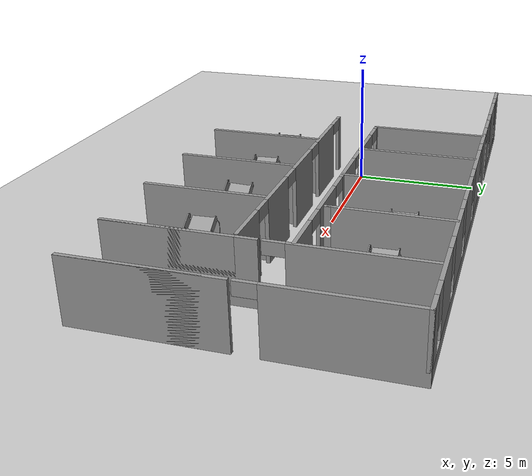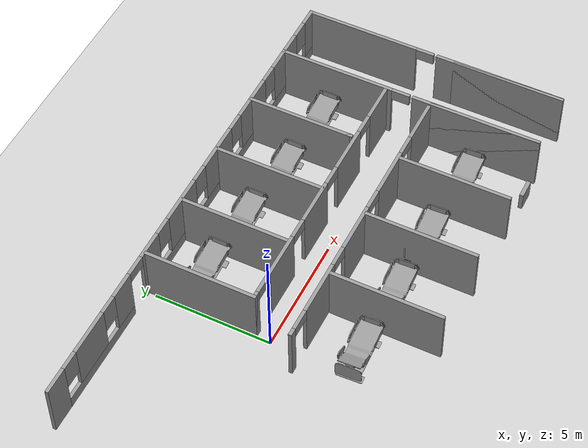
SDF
<sdf version="1.6">
 <world name="default">
  <model name="ground_plane">
   <static>1</static>
   <link name="link">
    <collision name="collision">
     <geometry><plane><normal>0 0 1</normal><size>100 100</size></plane></geometry>
     <surface><friction><ode><mu>100</mu><mu2>50</mu2></ode></friction></surface>
    </collision>
    <visual name="visual">
     <cast_shadows>0</cast_shadows>
     <geometry><plane><normal>0 0 1</normal><size>100 100</size></plane></geometry>
     <material>
      <script><uri>file://media/materials/scripts/gazebo.material</uri><name>Gazebo/Grey</name></script>
     </material>
    </visual>
   </link>
  </model>
  <model name="hopial">
   <pose>-0.234733 -0.327575 0 0 -0 0</pose>
   <link name="Wall_0">
    <pose>4 5.69478 0 0 -0 0</pose>
    <visual name="Wall_0_Visual_0">
     <pose>-10.0664 0 1.25 0 -0 0</pose>
     <geometry><box><size>1.11724 0.15 2.5</size></box></geometry>
     <material>
      <script><uri>file://media/materials/scripts/gazebo.material</uri><name>Gazebo/Grey</name></script>
      <ambient>1 1 1 1</ambient>
     </material>
    </visual>
    <collision name="Wall_0_Collision_0">
     <geometry><box><size>1.11724 0.15 2.5</size></box></geometry>
     <pose>-10.0664 0 1.25 0 -0 0</pose>
    </collision>
    <visual name="Wall_0_Visual_1">
     <pose>-3.29053 0 1.25 0 -0 0</pose>
     <geometry><box><size>1.24358 0.15 2.5</size></box></geometry>
     <material>
      <script><uri>file://media/materials/scripts/gazebo.material</uri><name>Gazebo/Grey</name></script>
      <ambient>1 1 1 1</ambient>
     </material>
    </visual>
    <collision name="Wall_0_Collision_1">
     <geometry><box><size>1.24358 0.15 2.5</size></box></geometry>
     <pose>-3.29053 0 1.25 0 -0 0</pose>
    </collision>
    <visual name="Wall_0_Visual_2">
     <pose>-7.16004 0 0.25 0 -0 0</pose>
     <geometry><box><size>4.69544 0.15 0.5</size></box></geometry>
     <material>
      <script><uri>file://media/materials/scripts/gazebo.material</uri><name>Gazebo/Grey</name></script>
      <ambient>1 1 1 1</ambient>
     </material>
    </visual>
    <collision name="Wall_0_Collision_2">
     <geometry><box><size>4.69544 0.15 0.5</size></box></geometry>
     <pose>-7.16004 0 0.25 0 -0 0</pose>
    </collision>
    <visual name="Wall_0_Visual_3">
     <pose>3.97813 0 0.25 0 -0 0</pose>
     <geometry><box><size>13.2937 0.15 0.5</size></box></geometry>
     <material>
      <script><uri>file://media/materials/scripts/gazebo.material</uri><name>Gazebo/Grey</name></script>
      <ambient>1 1 1 1</ambient>
     </material>
    </visual>
    <collision name="Wall_0_Collision_3">
     <geometry><box><size>13.2937 0.15 0.5</size></box></geometry>
     <pose>3.97813 0 0.25 0 -0 0</pose>
    </collision>
    <visual name="Wall_0_Visual_4">
     <pose>-7.7353 0 1.5 0 -0 0</pose>
     <geometry><box><size>1.94491 0.15 2</size></box></geometry>
     <material>
      <script><uri>file://media/materials/scripts/gazebo.material</uri><name>Gazebo/Grey</name></script>
      <ambient>1 1 1 1</ambient>
     </material>
    </visual>
    <collision name="Wall_0_Collision_4">
     <geometry><box><size>1.94491 0.15 2</size></box></geometry>
     <pose>-7.7353 0 1.5 0 -0 0</pose>
    </collision>
    <visual name="Wall_0_Visual_5">
     <pose>-5.38758 0 1.5 0 -0 0</pose>
     <geometry><box><size>1.15053 0.15 2</size></box></geometry>
     <material>
      <script><uri>file://media/materials/scripts/gazebo.material</uri><name>Gazebo/Grey</name></script>
      <ambient>1 1 1 1</ambient>
     </material>
    </visual>
    <collision name="Wall_0_Collision_5">
     <geometry><box><size>1.15053 0.15 2</size></box></geometry>
     <pose>-5.38758 0 1.5 0 -0 0</pose>
    </collision>
    <visual name="Wall_0_Visual_6">
     <pose>-5.38758 0 1.5 0 -0 0</pose>
     <geometry><box><size>1.15053 0.15 2</size></box></geometry>
     <material>
      <script><uri>file://media/materials/scripts/gazebo.material</uri><name>Gazebo/Grey</name></script>
      <ambient>1 1 1 1</ambient>
     </material>
    </visual>
    <collision name="Wall_0_Collision_6">
     <geometry><box><size>1.15053 0.15 2</size></box></geometry>
     <pose>-5.38758 0 1.5 0 -0 0</pose>
    </collision>
    <visual name="Wall_0_Visual_7">
     <pose>-0.80324 0 1.5 0 -0 0</pose>
     <geometry><box><size>2.13101 0.15 2</size></box></geometry>
     <material>
      <script><uri>file://media/materials/scripts/gazebo.material</uri><name>Gazebo/Grey</name></script>
      <ambient>1 1 1 1</ambient>
     </material>
    </visual>
    <collision name="Wall_0_Collision_7">
     <geometry><box><size>2.13101 0.15 2</size></box></geometry>
     <pose>-0.80324 0 1.5 0 -0 0</pose>
    </collision>
    <visual name="Wall_0_Visual_8">
     <pose>2.15103 0 1.5 0 -0 0</pose>
     <geometry><box><size>2.17753 0.15 2</size></box></geometry>
     <material>
      <script><uri>file://media/materials/scripts/gazebo.material</uri><name>Gazebo/Grey</name></script>
      <ambient>1 1 1 1</ambient>
     </material>
    </visual>
    <collision name="Wall_0_Collision_8">
     <geometry><box><size>2.17753 0.15 2</size></box></geometry>
     <pose>2.15103 0 1.5 0 -0 0</pose>
    </collision>
    <visual name="Wall_0_Visual_9">
     <pose>5.1053 0 1.5 0 -0 0</pose>
     <geometry><box><size>2.13101 0.15 2</size></box></geometry>
     <material>
      <script><uri>file://media/materials/scripts/gazebo.material</uri><name>Gazebo/Grey</name></script>
      <ambient>1 1 1 1</ambient>
     </material>
    </visual>
    <collision name="Wall_0_Collision_9">
     <geometry><box><size>2.13101 0.15 2</size></box></geometry>
     <pose>5.1053 0 1.5 0 -0 0</pose>
    </collision>
    <visual name="Wall_0_Visual_10">
     <pose>7.98978 0 1.5 0 -0 0</pose>
     <geometry><box><size>2.03796 0.15 2</size></box></geometry>
     <material>
      <script><uri>file://media/materials/scripts/gazebo.material</uri><name>Gazebo/Grey</name></script>
      <ambient>1 1 1 1</ambient>
     </material>
    </visual>
    <collision name="Wall_0_Collision_10">
     <geometry><box><size>2.03796 0.15 2</size></box></geometry>
     <pose>7.98978 0 1.5 0 -0 0</pose>
    </collision>
    <visual name="Wall_0_Visual_11">
     <pose>10.2169 0 1.5 0 -0 0</pose>
     <geometry><box><size>0.816241 0.15 2</size></box></geometry>
     <material>
      <script><uri>file://media/materials/scripts/gazebo.material</uri><name>Gazebo/Grey</name></script>
      <ambient>1 1 1 1</ambient>
     </material>
    </visual>
    <collision name="Wall_0_Collision_11">
     <geometry><box><size>0.816241 0.15 2</size></box></geometry>
     <pose>10.2169 0 1.5 0 -0 0</pose>
    </collision>
    <visual name="Wall_0_Visual_12">
     <pose>-9.10776 0 1.9 0 -0 0</pose>
     <geometry><box><size>0.8 0.15 1.2</size></box></geometry>
     <material>
      <script><uri>file://media/materials/scripts/gazebo.material</uri><name>Gazebo/Grey</name></script>
      <ambient>1 1 1 1</ambient>
     </material>
    </visual>
    <collision name="Wall_0_Collision_12">
     <geometry><box><size>0.8 0.15 1.2</size></box></geometry>
     <pose>-9.10776 0 1.9 0 -0 0</pose>
    </collision>
    <visual name="Wall_0_Visual_13">
     <pose>-2.26874 0 1.9 0 -0 0</pose>
     <geometry><box><size>0.8 0.15 1.2</size></box></geometry>
     <material>
      <script><uri>file://media/materials/scripts/gazebo.material</uri><name>Gazebo/Grey</name></script>
      <ambient>1 1 1 1</ambient>
     </material>
    </visual>
    <collision name="Wall_0_Collision_13">
     <geometry><box><size>0.8 0.15 1.2</size></box></geometry>
     <pose>-2.26874 0 1.9 0 -0 0</pose>
    </collision>
    <visual name="Wall_0_Visual_14">
     <pose>-6.36285 0 1.9 0 -0 0</pose>
     <geometry><box><size>0.8 0.15 1.2</size></box></geometry>
     <material>
      <script><uri>file://media/materials/scripts/gazebo.material</uri><name>Gazebo/Grey</name></script>
      <ambient>1 1 1 1</ambient>
     </material>
    </visual>
    <collision name="Wall_0_Collision_14">
     <geometry><box><size>0.8 0.15 1.2</size></box></geometry>
     <pose>-6.36285 0 1.9 0 -0 0</pose>
    </collision>
    <visual name="Wall_0_Visual_15">
     <pose>0.662263 0 1.9 0 -0 0</pose>
     <geometry><box><size>0.8 0.15 1.2</size></box></geometry>
     <material>
      <script><uri>file://media/materials/scripts/gazebo.material</uri><name>Gazebo/Grey</name></script>
      <ambient>1 1 1 1</ambient>
     </material>
    </visual>
    <collision name="Wall_0_Collision_15">
     <geometry><box><size>0.8 0.15 1.2</size></box></geometry>
     <pose>0.662263 0 1.9 0 -0 0</pose>
    </collision>
    <visual name="Wall_0_Visual_16">
     <pose>3.63979 0 1.9 0 -0 0</pose>
     <geometry><box><size>0.8 0.15 1.2</size></box></geometry>
     <material>
      <script><uri>file://media/materials/scripts/gazebo.material</uri><name>Gazebo/Grey</name></script>
      <ambient>1 1 1 1</ambient>
     </material>
    </visual>
    <collision name="Wall_0_Collision_16">
     <geometry><box><size>0.8 0.15 1.2</size></box></geometry>
     <pose>3.63979 0 1.9 0 -0 0</pose>
    </collision>
    <visual name="Wall_0_Visual_17">
     <pose>6.5708 0 1.9 0 -0 0</pose>
     <geometry><box><size>0.8 0.15 1.2</size></box></geometry>
     <material>
      <script><uri>file://media/materials/scripts/gazebo.material</uri><name>Gazebo/Grey</name></script>
      <ambient>1 1 1 1</ambient>
     </material>
    </visual>
    <collision name="Wall_0_Collision_17">
     <geometry><box><size>0.8 0.15 1.2</size></box></geometry>
     <pose>6.5708 0 1.9 0 -0 0</pose>
    </collision>
    <visual name="Wall_0_Visual_18">
     <pose>9.40876 0 1.9 0 -0 0</pose>
     <geometry><box><size>0.8 0.15 1.2</size></box></geometry>
     <material>
      <script><uri>file://media/materials/scripts/gazebo.material</uri><name>Gazebo/Grey</name></script>
      <ambient>1 1 1 1</ambient>
     </material>
    </visual>
    <collision name="Wall_0_Collision_18">
     <geometry><box><size>0.8 0.15 1.2</size></box></geometry>
     <pose>9.40876 0 1.9 0 -0 0</pose>
    </collision>
    <visual name="Wall_0_Visual_19">
     <pose>-4.36232 0 2.25 0 -0 0</pose>
     <geometry><box><size>0.9 0.15 0.5</size></box></geometry>
     <material>
      <script><uri>file://media/materials/scripts/gazebo.material</uri><name>Gazebo/Grey</name></script>
      <ambient>1 1 1 1</ambient>
     </material>
    </visual>
    <collision name="Wall_0_Collision_19">
     <geometry><box><size>0.9 0.15 0.5</size></box></geometry>
     <pose>-4.36232 0 2.25 0 -0 0</pose>
    </collision>
    <visual name="Wall_0_Visual_20">
     <pose>-4.36232 0 2.25 0 -0 0</pose>
     <geometry><box><size>0.9 0.15 0.5</size></box></geometry>
     <material>
      <script><uri>file://media/materials/scripts/gazebo.material</uri><name>Gazebo/Grey</name></script>
      <ambient>1 1 1 1</ambient>
     </material>
    </visual>
    <collision name="Wall_0_Collision_20">
     <geometry><box><size>0.9 0.15 0.5</size></box></geometry>
     <pose>-4.36232 0 2.25 0 -0 0</pose>
    </collision>
   </link>
   <link name="Wall_1">
    <pose>14.55 0.019777 0 0 0 -1.5708</pose>
    <visual name="Wall_1_Visual_0">
     <pose>-3.26238 0 1.25 0 -0 0</pose>
     <geometry><box><size>4.97525 0.15 2.5</size></box></geometry>
     <material>
      <script><uri>file://media/materials/scripts/gazebo.material</uri><name>Gazebo/Grey</name></script>
      <ambient>1 1 1 1</ambient>
     </material>
    </visual>
    <collision name="Wall_1_Collision_0">
     <geometry><box><size>4.97525 0.15 2.5</size></box></geometry>
     <pose>-3.26238 0 1.25 0 -0 0</pose>
    </collision>
    <visual name="Wall_1_Visual_1">
     <pose>2.93763 0 1.25 0 -0 0</pose>
     <geometry><box><size>5.62475 0.15 2.5</size></box></geometry>
     <material>
      <script><uri>file://media/materials/scripts/gazebo.material</uri><name>Gazebo/Grey</name></script>
      <ambient>1 1 1 1</ambient>
     </material>
    </visual>
    <collision name="Wall_1_Collision_1">
     <geometry><box><size>5.62475 0.15 2.5</size></box></geometry>
     <pose>2.93763 0 1.25 0 -0 0</pose>
    </collision>
    <visual name="Wall_1_Visual_2">
     <pose>3.33308 0 1.25 0 -0 0</pose>
     <geometry><box><size>4.83384 0.15 2.5</size></box></geometry>
     <material>
      <script><uri>file://media/materials/scripts/gazebo.material</uri><name>Gazebo/Grey</name></script>
      <ambient>1 1 1 1</ambient>
     </material>
    </visual>
    <collision name="Wall_1_Collision_2">
     <geometry><box><size>4.83384 0.15 2.5</size></box></geometry>
     <pose>3.33308 0 1.25 0 -0 0</pose>
    </collision>
    <visual name="Wall_1_Visual_3">
     <pose>-0.379297 0 2.25 0 -0 0</pose>
     <geometry><box><size>0.790907 0.15 0.5</size></box></geometry>
     <material>
      <script><uri>file://media/materials/scripts/gazebo.material</uri><name>Gazebo/Grey</name></script>
      <ambient>1 1 1 1</ambient>
     </material>
    </visual>
    <collision name="Wall_1_Collision_3">
     <geometry><box><size>0.790907 0.15 0.5</size></box></geometry>
     <pose>-0.379297 0 2.25 0 -0 0</pose>
    </collision>
   </link>
   <link name="Wall_18">
    <collision name="Wall_18_Collision">
     <geometry><box><size>4.75 0.15 2.5</size></box></geometry>
     <pose>0 0 1.25 0 -0 0</pose>
    </collision>
    <visual name="Wall_18_Visual">
     <pose>0 0 1.25 0 -0 0</pose>
     <geometry><box><size>4.75 0.15 2.5</size></box></geometry>
     <material>
      <script><uri>file://media/materials/scripts/gazebo.material</uri><name>Gazebo/Grey</name></script>
      <ambient>1 1 1 1</ambient>
     </material>
    </visual>
    <pose>0.335539 3.30173 0 0 0 -1.5708</pose>
   </link>
   <link name="Wall_19">
    <pose>6.13554 1.00173 0 0 -0 0</pose>
    <visual name="Wall_19_Visual_0">
     <pose>-5.71357 0 1.25 0 -0 0</pose>
     <geometry><box><size>0.322859 0.15 2.5</size></box></geometry>
     <material>
      <script><uri>file://media/materials/scripts/gazebo.material</uri><name>Gazebo/Grey</name></script>
      <ambient>1 1 1 1</ambient>
     </material>
    </visual>
    <collision name="Wall_19_Collision_0">
     <geometry><box><size>0.322859 0.15 2.5</size></box></geometry>
     <pose>-5.71357 0 1.25 0 -0 0</pose>
    </collision>
    <visual name="Wall_19_Visual_1">
     <pose>-3.6599 0 1.25 0 -0 0</pose>
     <geometry><box><size>1.98448 0.15 2.5</size></box></geometry>
     <material>
      <script><uri>file://media/materials/scripts/gazebo.material</uri><name>Gazebo/Grey</name></script>
      <ambient>1 1 1 1</ambient>
     </material>
    </visual>
    <collision name="Wall_19_Collision_1">
     <geometry><box><size>1.98448 0.15 2.5</size></box></geometry>
     <pose>-3.6599 0 1.25 0 -0 0</pose>
    </collision>
    <visual name="Wall_19_Visual_2">
     <pose>-0.752155 0 1.25 0 -0 0</pose>
     <geometry><box><size>2.03101 0.15 2.5</size></box></geometry>
     <material>
      <script><uri>file://media/materials/scripts/gazebo.material</uri><name>Gazebo/Grey</name></script>
      <ambient>1 1 1 1</ambient>
     </material>
    </visual>
    <collision name="Wall_19_Collision_2">
     <geometry><box><size>2.03101 0.15 2.5</size></box></geometry>
     <pose>-0.752155 0 1.25 0 -0 0</pose>
    </collision>
    <visual name="Wall_19_Visual_3">
     <pose>2.20211 0 1.25 0 -0 0</pose>
     <geometry><box><size>2.07753 0.15 2.5</size></box></geometry>
     <material>
      <script><uri>file://media/materials/scripts/gazebo.material</uri><name>Gazebo/Grey</name></script>
      <ambient>1 1 1 1</ambient>
     </material>
    </visual>
    <collision name="Wall_19_Collision_3">
     <geometry><box><size>2.07753 0.15 2.5</size></box></geometry>
     <pose>2.20211 0 1.25 0 -0 0</pose>
    </collision>
    <visual name="Wall_19_Visual_4">
     <pose>5.00794 0 1.25 0 -0 0</pose>
     <geometry><box><size>1.73412 0.15 2.5</size></box></geometry>
     <material>
      <script><uri>file://media/materials/scripts/gazebo.material</uri><name>Gazebo/Grey</name></script>
      <ambient>1 1 1 1</ambient>
     </material>
    </visual>
    <collision name="Wall_19_Collision_4">
     <geometry><box><size>1.73412 0.15 2.5</size></box></geometry>
     <pose>5.00794 0 1.25 0 -0 0</pose>
    </collision>
    <visual name="Wall_19_Visual_5">
     <pose>-5.10214 0 2.25 0 -0 0</pose>
     <geometry><box><size>0.9 0.15 0.5</size></box></geometry>
     <material>
      <script><uri>file://media/materials/scripts/gazebo.material</uri><name>Gazebo/Grey</name></script>
      <ambient>1 1 1 1</ambient>
     </material>
    </visual>
    <collision name="Wall_19_Collision_5">
     <geometry><box><size>0.9 0.15 0.5</size></box></geometry>
     <pose>-5.10214 0 2.25 0 -0 0</pose>
    </collision>
    <visual name="Wall_19_Visual_6">
     <pose>-2.21766 0 2.25 0 -0 0</pose>
     <geometry><box><size>0.9 0.15 0.5</size></box></geometry>
     <material>
      <script><uri>file://media/materials/scripts/gazebo.material</uri><name>Gazebo/Grey</name></script>
      <ambient>1 1 1 1</ambient>
     </material>
    </visual>
    <collision name="Wall_19_Collision_6">
     <geometry><box><size>0.9 0.15 0.5</size></box></geometry>
     <pose>-2.21766 0 2.25 0 -0 0</pose>
    </collision>
    <visual name="Wall_19_Visual_7">
     <pose>0.713348 0 2.25 0 -0 0</pose>
     <geometry><box><size>0.9 0.15 0.5</size></box></geometry>
     <material>
      <script><uri>file://media/materials/scripts/gazebo.material</uri><name>Gazebo/Grey</name></script>
      <ambient>1 1 1 1</ambient>
     </material>
    </visual>
    <collision name="Wall_19_Collision_7">
     <geometry><box><size>0.9 0.15 0.5</size></box></geometry>
     <pose>0.713348 0 2.25 0 -0 0</pose>
    </collision>
    <visual name="Wall_19_Visual_8">
     <pose>3.69088 0 2.25 0 -0 0</pose>
     <geometry><box><size>0.9 0.15 0.5</size></box></geometry>
     <material>
      <script><uri>file://media/materials/scripts/gazebo.material</uri><name>Gazebo/Grey</name></script>
      <ambient>1 1 1 1</ambient>
     </material>
    </visual>
    <collision name="Wall_19_Collision_8">
     <geometry><box><size>0.9 0.15 0.5</size></box></geometry>
     <pose>3.69088 0 2.25 0 -0 0</pose>
    </collision>
   </link>
   <link name="Wall_32">
    <pose>5.62659 -0.958143 0 0 -0 0</pose>
    <visual name="Wall_32_Visual_0">
     <pose>-6.08857 0 1.25 0 -0 0</pose>
     <geometry><box><size>0.322859 0.15 2.5</size></box></geometry>
     <material>
      <script><uri>file://media/materials/scripts/gazebo.material</uri><name>Gazebo/Grey</name></script>
      <ambient>1 1 1 1</ambient>
     </material>
    </visual>
    <collision name="Wall_32_Collision_0">
     <geometry><box><size>0.322859 0.15 2.5</size></box></geometry>
     <pose>-6.08857 0 1.25 0 -0 0</pose>
    </collision>
    <visual name="Wall_32_Visual_1">
     <pose>-3.8488 0 1.25 0 -0 0</pose>
     <geometry><box><size>2.35667 0.15 2.5</size></box></geometry>
     <material>
      <script><uri>file://media/materials/scripts/gazebo.material</uri><name>Gazebo/Grey</name></script>
      <ambient>1 1 1 1</ambient>
     </material>
    </visual>
    <collision name="Wall_32_Collision_1">
     <geometry><box><size>2.35667 0.15 2.5</size></box></geometry>
     <pose>-3.8488 0 1.25 0 -0 0</pose>
    </collision>
    <visual name="Wall_32_Visual_2">
     <pose>-0.685178 0 1.25 0 -0 0</pose>
     <geometry><box><size>2.17058 0.15 2.5</size></box></geometry>
     <material>
      <script><uri>file://media/materials/scripts/gazebo.material</uri><name>Gazebo/Grey</name></script>
      <ambient>1 1 1 1</ambient>
     </material>
    </visual>
    <collision name="Wall_32_Collision_2">
     <geometry><box><size>2.17058 0.15 2.5</size></box></geometry>
     <pose>-0.685178 0 1.25 0 -0 0</pose>
    </collision>
    <visual name="Wall_32_Visual_3">
     <pose>2.3854 0 1.25 0 -0 0</pose>
     <geometry><box><size>2.17058 0.15 2.5</size></box></geometry>
     <material>
      <script><uri>file://media/materials/scripts/gazebo.material</uri><name>Gazebo/Grey</name></script>
      <ambient>1 1 1 1</ambient>
     </material>
    </visual>
    <collision name="Wall_32_Collision_3">
     <geometry><box><size>2.17058 0.15 2.5</size></box></geometry>
     <pose>2.3854 0 1.25 0 -0 0</pose>
    </collision>
    <visual name="Wall_32_Visual_4">
     <pose>5.31034 0 1.25 0 -0 0</pose>
     <geometry><box><size>1.87931 0.15 2.5</size></box></geometry>
     <material>
      <script><uri>file://media/materials/scripts/gazebo.material</uri><name>Gazebo/Grey</name></script>
      <ambient>1 1 1 1</ambient>
     </material>
    </visual>
    <collision name="Wall_32_Collision_4">
     <geometry><box><size>1.87931 0.15 2.5</size></box></geometry>
     <pose>5.31034 0 1.25 0 -0 0</pose>
    </collision>
    <visual name="Wall_32_Visual_5">
     <pose>-5.47714 0 2.25 0 -0 0</pose>
     <geometry><box><size>0.9 0.15 0.5</size></box></geometry>
     <material>
      <script><uri>file://media/materials/scripts/gazebo.material</uri><name>Gazebo/Grey</name></script>
      <ambient>1 1 1 1</ambient>
     </material>
    </visual>
    <collision name="Wall_32_Collision_5">
     <geometry><box><size>0.9 0.15 0.5</size></box></geometry>
     <pose>-5.47714 0 2.25 0 -0 0</pose>
    </collision>
    <visual name="Wall_32_Visual_6">
     <pose>-2.22047 0 2.25 0 -0 0</pose>
     <geometry><box><size>0.9 0.15 0.5</size></box></geometry>
     <material>
      <script><uri>file://media/materials/scripts/gazebo.material</uri><name>Gazebo/Grey</name></script>
      <ambient>1 1 1 1</ambient>
     </material>
    </visual>
    <collision name="Wall_32_Collision_6">
     <geometry><box><size>0.9 0.15 0.5</size></box></geometry>
     <pose>-2.22047 0 2.25 0 -0 0</pose>
    </collision>
    <visual name="Wall_32_Visual_7">
     <pose>0.850111 0 2.25 0 -0 0</pose>
     <geometry><box><size>0.9 0.15 0.5</size></box></geometry>
     <material>
      <script><uri>file://media/materials/scripts/gazebo.material</uri><name>Gazebo/Grey</name></script>
      <ambient>1 1 1 1</ambient>
     </material>
    </visual>
    <collision name="Wall_32_Collision_7">
     <geometry><box><size>0.9 0.15 0.5</size></box></geometry>
     <pose>0.850111 0 2.25 0 -0 0</pose>
    </collision>
    <visual name="Wall_32_Visual_8">
     <pose>3.92069 0 2.25 0 -0 0</pose>
     <geometry><box><size>0.9 0.15 0.5</size></box></geometry>
     <material>
      <script><uri>file://media/materials/scripts/gazebo.material</uri><name>Gazebo/Grey</name></script>
      <ambient>1 1 1 1</ambient>
     </material>
    </visual>
    <collision name="Wall_32_Collision_8">
     <geometry><box><size>0.9 0.15 0.5</size></box></geometry>
     <pose>3.92069 0 2.25 0 -0 0</pose>
    </collision>
   </link>
   <link name="Wall_34">
    <collision name="Wall_34_Collision">
     <geometry><box><size>4.5 0.15 2.5</size></box></geometry>
     <pose>0 0 1.25 0 -0 0</pose>
    </collision>
    <visual name="Wall_34_Visual">
     <pose>0 0 1.25 0 -0 0</pose>
     <geometry><box><size>4.5 0.15 2.5</size></box></geometry>
     <material>
      <script><uri>file://media/materials/scripts/gazebo.material</uri><name>Gazebo/Grey</name></script>
      <ambient>1 1 1 1</ambient>
     </material>
    </visual>
    <pose>9.03551 3.47325 0 0 0 -1.5708</pose>
   </link>
   <link name="Wall_35">
    <collision name="Wall_35_Collision">
     <geometry><box><size>0.25 0.15 2.5</size></box></geometry>
     <pose>0 0 1.25 0 -0 0</pose>
    </collision>
    <visual name="Wall_35_Visual">
     <pose>0 0 1.25 0 -0 0</pose>
     <geometry><box><size>0.25 0.15 2.5</size></box></geometry>
     <material>
      <script><uri>file://media/materials/scripts/gazebo.material</uri><name>Gazebo/Grey</name></script>
      <ambient>1 1 1 1</ambient>
     </material>
    </visual>
    <pose>9.03551 1.24825 0 0 0 -1.5708</pose>
   </link>
   <link name="Wall_37">
    <collision name="Wall_37_Collision">
     <geometry><box><size>4.75 0.15 2.5</size></box></geometry>
     <pose>0 0 1.25 0 -0 0</pose>
    </collision>
    <visual name="Wall_37_Visual">
     <pose>0 0 1.25 0 -0 0</pose>
     <geometry><box><size>4.75 0.15 2.5</size></box></geometry>
     <material>
      <script><uri>file://media/materials/scripts/gazebo.material</uri><name>Gazebo/Grey</name></script>
      <ambient>1 1 1 1</ambient>
     </material>
    </visual>
    <pose>6.1045 3.34825 0 0 0 -1.5708</pose>
   </link>
   <link name="Wall_39">
    <collision name="Wall_39_Collision">
     <geometry><box><size>4.75 0.15 2.5</size></box></geometry>
     <pose>0 0 1.25 0 -0 0</pose>
    </collision>
    <visual name="Wall_39_Visual">
     <pose>0 0 1.25 0 -0 0</pose>
     <geometry><box><size>4.75 0.15 2.5</size></box></geometry>
     <material>
      <script><uri>file://media/materials/scripts/gazebo.material</uri><name>Gazebo/Grey</name></script>
      <ambient>1 1 1 1</ambient>
     </material>
    </visual>
    <pose>3.22002 3.34825 0 0 0 -1.5708</pose>
   </link>
   <link name="Wall_41">
    <collision name="Wall_41_Collision">
     <geometry><box><size>4.75 0.15 2.5</size></box></geometry>
     <pose>0 0 1.25 0 -0 0</pose>
    </collision>
    <visual name="Wall_41_Visual">
     <pose>0 0 1.25 0 -0 0</pose>
     <geometry><box><size>4.75 0.15 2.5</size></box></geometry>
     <material>
      <script><uri>file://media/materials/scripts/gazebo.material</uri><name>Gazebo/Grey</name></script>
      <ambient>1 1 1 1</ambient>
     </material>
    </visual>
    <pose>2.56869 -3.35119 0 0 0 -1.5708</pose>
   </link>
   <link name="Wall_43">
    <collision name="Wall_43_Collision">
     <geometry><box><size>4.75 0.15 2.5</size></box></geometry>
     <pose>0 0 1.25 0 -0 0</pose>
    </collision>
    <visual name="Wall_43_Visual">
     <pose>0 0 1.25 0 -0 0</pose>
     <geometry><box><size>4.75 0.15 2.5</size></box></geometry>
     <material>
      <script><uri>file://media/materials/scripts/gazebo.material</uri><name>Gazebo/Grey</name></script>
      <ambient>1 1 1 1</ambient>
     </material>
    </visual>
    <pose>5.73231 -3.35119 0 0 0 -1.5708</pose>
   </link>
   <link name="Wall_45">
    <collision name="Wall_45_Collision">
     <geometry><box><size>4.75 0.15 2.5</size></box></geometry>
     <pose>0 0 1.25 0 -0 0</pose>
    </collision>
    <visual name="Wall_45_Visual">
     <pose>0 0 1.25 0 -0 0</pose>
     <geometry><box><size>4.75 0.15 2.5</size></box></geometry>
     <material>
      <script><uri>file://media/materials/scripts/gazebo.material</uri><name>Gazebo/Grey</name></script>
      <ambient>1 1 1 1</ambient>
     </material>
    </visual>
    <pose>8.84942 -3.39771 0 0 0 -1.5708</pose>
   </link>
   <link name="Wall_7">
    <pose>12.013 0.019777 0 0 0 -1.5708</pose>
    <visual name="Wall_7_Visual_0">
     <pose>-3.23911 0 1.25 0 -0 0</pose>
     <geometry><box><size>5.02177 0.15 2.5</size></box></geometry>
     <material>
      <script><uri>file://media/materials/scripts/gazebo.material</uri><name>Gazebo/Grey</name></script>
      <ambient>1 1 1 1</ambient>
     </material>
    </visual>
    <collision name="Wall_7_Collision_0">
     <geometry><box><size>5.02177 0.15 2.5</size></box></geometry>
     <pose>-3.23911 0 1.25 0 -0 0</pose>
    </collision>
    <visual name="Wall_7_Visual_1">
     <pose>2.96089 0 1.25 0 -0 0</pose>
     <geometry><box><size>5.57823 0.15 2.5</size></box></geometry>
     <material>
      <script><uri>file://media/materials/scripts/gazebo.material</uri><name>Gazebo/Grey</name></script>
      <ambient>1 1 1 1</ambient>
     </material>
    </visual>
    <collision name="Wall_7_Collision_1">
     <geometry><box><size>5.57823 0.15 2.5</size></box></geometry>
     <pose>2.96089 0 1.25 0 -0 0</pose>
    </collision>
    <visual name="Wall_7_Visual_2">
     <pose>3.35634 0 1.25 0 -0 0</pose>
     <geometry><box><size>4.78732 0.15 2.5</size></box></geometry>
     <material>
      <script><uri>file://media/materials/scripts/gazebo.material</uri><name>Gazebo/Grey</name></script>
      <ambient>1 1 1 1</ambient>
     </material>
    </visual>
    <collision name="Wall_7_Collision_2">
     <geometry><box><size>4.78732 0.15 2.5</size></box></geometry>
     <pose>3.35634 0 1.25 0 -0 0</pose>
    </collision>
    <visual name="Wall_7_Visual_3">
     <pose>-0.332773 0 2.25 0 -0 0</pose>
     <geometry><box><size>0.790907 0.15 0.5</size></box></geometry>
     <material>
      <script><uri>file://media/materials/scripts/gazebo.material</uri><name>Gazebo/Grey</name></script>
      <ambient>1 1 1 1</ambient>
     </material>
    </visual>
    <collision name="Wall_7_Collision_3">
     <geometry><box><size>0.790907 0.15 0.5</size></box></geometry>
     <pose>-0.332773 0 2.25 0 -0 0</pose>
    </collision>
   </link>
   <link name="Window_6">
    <collision name="Window_6_Collision">
     <geometry><box><size>0.8 0.17 0.8</size></box></geometry>
     <pose>0 0 0.4 0 -0 0</pose>
    </collision>
    <visual name="Window_6_Visual">
     <pose>0 0 0.4 0 -0 0</pose>
     <geometry><box><size>0.8 0.17 0.8</size></box></geometry>
     <material>
      <script><uri>file://media/materials/scripts/gazebo.material</uri><name>Gazebo/Grey</name></script>
     </material>
    </visual>
    <pose>10.5243 -5.79663 0.5 0 -0 0</pose>
   </link>
   <static>1</static>
  </model>
  <model name="bed">
   <link name="link">
    <pose>1.86805 -0.946898 0 -0.098455 -0.011167 1.57544</pose>
    <inertial>
     <mass>1</mass>
     <inertia>
      <ixx>0.166667</ixx>
      <ixy>0</ixy>
      <ixz>0</ixz>
      <iyy>0.166667</iyy>
      <iyz>0</iyz>
      <izz>0.166667</izz>
     </inertia>
    </inertial>
    <visual name="visual">
     <geometry><mesh><uri>/home/firas/Desktop/model.dae</uri><scale>1 1 1</scale></mesh></geometry>
     <material>
      <script><name>Gazebo/Grey</name><uri>file://media/materials/scripts/gazebo.material</uri></script>
      <ambient>0.3 0.3 0.3 1</ambient>
      <diffuse>0.7 0.7 0.7 1</diffuse>
      <specular>0.01 0.01 0.01 1</specular>
      <emissive>0 0 0 1</emissive>
      <shader type="vertex"><normal_map>__default__</normal_map></shader>
     </material>
    </visual>
    <collision name="collision">
     <geometry><box><size>1 1 1</size></box></geometry>
     <surface>
      <friction>
       <ode><mu>1</mu><mu2>1</mu2><fdir1>0 0 0</fdir1><slip1>0</slip1><slip2>0</slip2></ode>
       <torsional>
        <coefficient>1</coefficient>
        <patch_radius>0</patch_radius>
        <surface_radius>0</surface_radius>
        <use_patch_radius>1</use_patch_radius>
        <ode><slip>0</slip></ode>
       </torsional>
      </friction>
      <bounce><restitution_coefficient>0</restitution_coefficient><threshold>1e+06</threshold></bounce>
      <contact>
       <collide_without_contact>0</collide_without_contact>
       <collide_without_contact_bitmask>1</collide_without_contact_bitmask>
       <collide_bitmask>1</collide_bitmask>
       <ode>
        <soft_cfm>0</soft_cfm>
        <soft_erp>0.2</soft_erp>
        <kp>1e+13</kp>
        <kd>1</kd>
        <max_vel>0.01</max_vel>
        <min_depth>0</min_depth>
       </ode>
       <bullet>
        <split_impulse>1</split_impulse>
        <split_impulse_penetration_threshold>-0.01</split_impulse_penetration_threshold>
        <soft_cfm>0</soft_cfm>
        <soft_erp>0.2</soft_erp>
        <kp>1e+13</kp>
        <kd>1</kd>
       </bullet>
      </contact>
     </surface>
    </collision>
   </link>
   <link name="link_clone">
    <pose>4.69188 -1.08502 -0 -0.098455 -0.011167 1.57544</pose>
    <inertial>
     <mass>1</mass>
     <inertia>
      <ixx>0.166667</ixx>
      <ixy>0</ixy>
      <ixz>0</ixz>
      <iyy>0.166667</iyy>
      <iyz>0</iyz>
      <izz>0.166667</izz>
     </inertia>
    </inertial>
    <visual name="visual">
     <geometry><mesh><uri>/home/firas/Desktop/model.dae</uri><scale>1 1 1</scale></mesh></geometry>
     <material>
      <script><name>Gazebo/Grey</name><uri>file://media/materials/scripts/gazebo.material</uri></script>
      <ambient>0.3 0.3 0.3 1</ambient>
      <diffuse>0.7 0.7 0.7 1</diffuse>
      <specular>0.01 0.01 0.01 1</specular>
      <emissive>0 0 0 1</emissive>
      <shader type="vertex"><normal_map>__default__</normal_map></shader>
     </material>
    </visual>
    <collision name="collision">
     <geometry><box><size>1 1 1</size></box></geometry>
     <surface>
      <friction>
       <ode><mu>1</mu><mu2>1</mu2><fdir1>0 0 0</fdir1><slip1>0</slip1><slip2>0</slip2></ode>
       <torsional>
        <coefficient>1</coefficient>
        <patch_radius>0</patch_radius>
        <surface_radius>0</surface_radius>
        <use_patch_radius>1</use_patch_radius>
        <ode><slip>0</slip></ode>
       </torsional>
      </friction>
      <bounce><restitution_coefficient>0</restitution_coefficient><threshold>1e+06</threshold></bounce>
      <contact>
       <collide_without_contact>0</collide_without_contact>
       <collide_without_contact_bitmask>1</collide_without_contact_bitmask>
       <collide_bitmask>1</collide_bitmask>
       <ode>
        <soft_cfm>0</soft_cfm>
        <soft_erp>0.2</soft_erp>
        <kp>1e+13</kp>
        <kd>1</kd>
        <max_vel>0.01</max_vel>
        <min_depth>0</min_depth>
       </ode>
       <bullet>
        <split_impulse>1</split_impulse>
        <split_impulse_penetration_threshold>-0.01</split_impulse_penetration_threshold>
        <soft_cfm>0</soft_cfm>
        <soft_erp>0.2</soft_erp>
        <kp>1e+13</kp>
        <kd>1</kd>
       </bullet>
      </contact>
     </surface>
    </collision>
   </link>
   <link name="link_clone_0">
    <pose>7.62662 -1.31708 -0 -0.098455 -0.011167 1.57544</pose>
    <inertial>
     <mass>1</mass>
     <inertia>
      <ixx>0.166667</ixx>
      <ixy>0</ixy>
      <ixz>0</ixz>
      <iyy>0.166667</iyy>
      <iyz>0</iyz>
      <izz>0.166667</izz>
     </inertia>
    </inertial>
    <visual name="visual">
     <geometry><mesh><uri>/home/firas/Desktop/model.dae</uri><scale>1 1 1</scale></mesh></geometry>
     <material>
      <script><name>Gazebo/Grey</name><uri>file://media/materials/scripts/gazebo.material</uri></script>
      <ambient>0.3 0.3 0.3 1</ambient>
      <diffuse>0.7 0.7 0.7 1</diffuse>
      <specular>0.01 0.01 0.01 1</specular>
      <emissive>0 0 0 1</emissive>
      <shader type="vertex"><normal_map>__default__</normal_map></shader>
     </material>
    </visual>
    <collision name="collision">
     <geometry><box><size>1 1 1</size></box></geometry>
     <surface>
      <friction>
       <ode><mu>1</mu><mu2>1</mu2><fdir1>0 0 0</fdir1><slip1>0</slip1><slip2>0</slip2></ode>
       <torsional>
        <coefficient>1</coefficient>
        <patch_radius>0</patch_radius>
        <surface_radius>0</surface_radius>
        <use_patch_radius>1</use_patch_radius>
        <ode><slip>0</slip></ode>
       </torsional>
      </friction>
      <bounce><restitution_coefficient>0</restitution_coefficient><threshold>1e+06</threshold></bounce>
      <contact>
       <collide_without_contact>0</collide_without_contact>
       <collide_without_contact_bitmask>1</collide_without_contact_bitmask>
       <collide_bitmask>1</collide_bitmask>
       <ode>
        <soft_cfm>0</soft_cfm>
        <soft_erp>0.2</soft_erp>
        <kp>1e+13</kp>
        <kd>1</kd>
        <max_vel>0.01</max_vel>
        <min_depth>0</min_depth>
       </ode>
       <bullet>
        <split_impulse>1</split_impulse>
        <split_impulse_penetration_threshold>-0.01</split_impulse_penetration_threshold>
        <soft_cfm>0</soft_cfm>
        <soft_erp>0.2</soft_erp>
        <kp>1e+13</kp>
        <kd>1</kd>
       </bullet>
      </contact>
     </surface>
    </collision>
   </link>
   <link name="link_clone_1">
    <pose>10.6594 -1.42519 -0 -0.098455 -0.011167 1.57544</pose>
    <inertial>
     <mass>1</mass>
     <inertia>
      <ixx>0.166667</ixx>
      <ixy>0</ixy>
      <ixz>0</ixz>
      <iyy>0.166667</iyy>
      <iyz>0</iyz>
      <izz>0.166667</izz>
     </inertia>
    </inertial>
    <visual name="visual">
     <geometry><mesh><uri>/home/firas/Desktop/model.dae</uri><scale>1 1 1</scale></mesh></geometry>
     <material>
      <script><name>Gazebo/Grey</name><uri>file://media/materials/scripts/gazebo.material</uri></script>
      <ambient>0.3 0.3 0.3 1</ambient>
      <diffuse>0.7 0.7 0.7 1</diffuse>
      <specular>0.01 0.01 0.01 1</specular>
      <emissive>0 0 0 1</emissive>
      <shader type="vertex"><normal_map>__default__</normal_map></shader>
     </material>
    </visual>
    <collision name="collision">
     <geometry><box><size>1 1 1</size></box></geometry>
     <surface>
      <friction>
       <ode><mu>1</mu><mu2>1</mu2><fdir1>0 0 0</fdir1><slip1>0</slip1><slip2>0</slip2></ode>
       <torsional>
        <coefficient>1</coefficient>
        <patch_radius>0</patch_radius>
        <surface_radius>0</surface_radius>
        <use_patch_radius>1</use_patch_radius>
        <ode><slip>0</slip></ode>
       </torsional>
      </friction>
      <bounce><restitution_coefficient>0</restitution_coefficient><threshold>1e+06</threshold></bounce>
      <contact>
       <collide_without_contact>0</collide_without_contact>
       <collide_without_contact_bitmask>1</collide_without_contact_bitmask>
       <collide_bitmask>1</collide_bitmask>
       <ode>
        <soft_cfm>0</soft_cfm>
        <soft_erp>0.2</soft_erp>
        <kp>1e+13</kp>
        <kd>1</kd>
        <max_vel>0.01</max_vel>
        <min_depth>0</min_depth>
       </ode>
       <bullet>
        <split_impulse>1</split_impulse>
        <split_impulse_penetration_threshold>-0.01</split_impulse_penetration_threshold>
        <soft_cfm>0</soft_cfm>
        <soft_erp>0.2</soft_erp>
        <kp>1e+13</kp>
        <kd>1</kd>
       </bullet>
      </contact>
     </surface>
    </collision>
   </link>
   <static>0</static>
   <pose>0.825598 3.91616 0.5 0 -0 0</pose>
  </model>
  <model name="hospitalbed_clone_1_clone">
   <link name="link">
    <pose>-0.225882 -1.75851 0 0 -0 0</pose>
    <inertial>
     <mass>1</mass>
     <inertia>
      <ixx>0.166667</ixx>
      <ixy>0</ixy>
      <ixz>0</ixz>
      <iyy>0.166667</iyy>
      <iyz>0</iyz>
      <izz>0.166667</izz>
     </inertia>
    </inertial>
    <visual name="visual">
     <geometry><mesh><uri>/home/firas/Desktop/model.dae</uri><scale>1 1 1</scale></mesh></geometry>
     <material>
      <script><name>Gazebo/Grey</name><uri>file://media/materials/scripts/gazebo.material</uri></script>
      <ambient>0.3 0.3 0.3 1</ambient>
      <diffuse>0.7 0.7 0.7 1</diffuse>
      <specular>0.01 0.01 0.01 1</specular>
      <emissive>0 0 0 1</emissive>
      <shader type="vertex"><normal_map>__default__</normal_map></shader>
     </material>
    </visual>
    <collision name="collision">
     <geometry><box><size>1 1 1</size></box></geometry>
     <surface>
      <friction>
       <ode><mu>1</mu><mu2>1</mu2><fdir1>0 0 0</fdir1><slip1>0</slip1><slip2>0</slip2></ode>
       <torsional>
        <coefficient>1</coefficient>
        <patch_radius>0</patch_radius>
        <surface_radius>0</surface_radius>
        <use_patch_radius>1</use_patch_radius>
        <ode><slip>0</slip></ode>
       </torsional>
      </friction>
      <bounce><restitution_coefficient>0</restitution_coefficient><threshold>1e+06</threshold></bounce>
      <contact>
       <collide_without_contact>0</collide_without_contact>
       <collide_without_contact_bitmask>1</collide_without_contact_bitmask>
       <collide_bitmask>1</collide_bitmask>
       <ode>
        <soft_cfm>0</soft_cfm>
        <soft_erp>0.2</soft_erp>
        <kp>1e+13</kp>
        <kd>1</kd>
        <max_vel>0.01</max_vel>
        <min_depth>0</min_depth>
       </ode>
       <bullet>
        <split_impulse>1</split_impulse>
        <split_impulse_penetration_threshold>-0.01</split_impulse_penetration_threshold>
        <soft_cfm>0</soft_cfm>
        <soft_erp>0.2</soft_erp>
        <kp>1e+13</kp>
        <kd>1</kd>
       </bullet>
      </contact>
     </surface>
    </collision>
   </link>
   <static>0</static>
   <pose>0.091721 -3.80865 0.5 0 -0 1.62013</pose>
  </model>
  <model name="hospitalbed_clone_1_clone_0">
   <link name="link">
    <pose>-0.225882 -1.75851 0 0 -0 0</pose>
    <inertial>
     <mass>1</mass>
     <inertia>
      <ixx>0.166667</ixx>
      <ixy>0</ixy>
      <ixz>0</ixz>
      <iyy>0.166667</iyy>
      <iyz>0</iyz>
      <izz>0.166667</izz>
     </inertia>
    </inertial>
    <visual name="visual">
     <geometry><mesh><uri>/home/firas/Desktop/model.dae</uri><scale>1 1 1</scale></mesh></geometry>
     <material>
      <script><name>Gazebo/Grey</name><uri>file://media/materials/scripts/gazebo.material</uri></script>
      <ambient>0.3 0.3 0.3 1</ambient>
      <diffuse>0.7 0.7 0.7 1</diffuse>
      <specular>0.01 0.01 0.01 1</specular>
      <emissive>0 0 0 1</emissive>
      <shader type="vertex"><normal_map>__default__</normal_map></shader>
     </material>
    </visual>
    <collision name="collision">
     <geometry><box><size>1 1 1</size></box></geometry>
     <surface>
      <friction>
       <ode><mu>1</mu><mu2>1</mu2><fdir1>0 0 0</fdir1><slip1>0</slip1><slip2>0</slip2></ode>
       <torsional>
        <coefficient>1</coefficient>
        <patch_radius>0</patch_radius>
        <surface_radius>0</surface_radius>
        <use_patch_radius>1</use_patch_radius>
        <ode><slip>0</slip></ode>
       </torsional>
      </friction>
      <bounce><restitution_coefficient>0</restitution_coefficient><threshold>1e+06</threshold></bounce>
      <contact>
       <collide_without_contact>0</collide_without_contact>
       <collide_without_contact_bitmask>1</collide_without_contact_bitmask>
       <collide_bitmask>1</collide_bitmask>
       <ode>
        <soft_cfm>0</soft_cfm>
        <soft_erp>0.2</soft_erp>
        <kp>1e+13</kp>
        <kd>1</kd>
        <max_vel>0.01</max_vel>
        <min_depth>0</min_depth>
       </ode>
       <bullet>
        <split_impulse>1</split_impulse>
        <split_impulse_penetration_threshold>-0.01</split_impulse_penetration_threshold>
        <soft_cfm>0</soft_cfm>
        <soft_erp>0.2</soft_erp>
        <kp>1e+13</kp>
        <kd>1</kd>
       </bullet>
      </contact>
     </surface>
    </collision>
   </link>
   <static>0</static>
   <pose>3.10163 -3.85622 0.5 0 -0 1.62013</pose>
  </model>
  <model name="hospitalbed_clone_1_clone_1">
   <link name="link">
    <pose>-0.225882 -1.75851 0 0 -0 0</pose>
    <inertial>
     <mass>1</mass>
     <inertia>
      <ixx>0.166667</ixx>
      <ixy>0</ixy>
      <ixz>0</ixz>
      <iyy>0.166667</iyy>
      <iyz>0</iyz>
      <izz>0.166667</izz>
     </inertia>
    </inertial>
    <visual name="visual">
     <geometry><mesh><uri>/home/firas/Desktop/model.dae</uri><scale>1 1 1</scale></mesh></geometry>
     <material>
      <script><name>Gazebo/Grey</name><uri>file://media/materials/scripts/gazebo.material</uri></script>
      <ambient>0.3 0.3 0.3 1</ambient>
      <diffuse>0.7 0.7 0.7 1</diffuse>
      <specular>0.01 0.01 0.01 1</specular>
      <emissive>0 0 0 1</emissive>
      <shader type="vertex"><normal_map>__default__</normal_map></shader>
     </material>
    </visual>
    <collision name="collision">
     <geometry><box><size>1 1 1</size></box></geometry>
     <surface>
      <friction>
       <ode><mu>1</mu><mu2>1</mu2><fdir1>0 0 0</fdir1><slip1>0</slip1><slip2>0</slip2></ode>
       <torsional>
        <coefficient>1</coefficient>
        <patch_radius>0</patch_radius>
        <surface_radius>0</surface_radius>
        <use_patch_radius>1</use_patch_radius>
        <ode><slip>0</slip></ode>
       </torsional>
      </friction>
      <bounce><restitution_coefficient>0</restitution_coefficient><threshold>1e+06</threshold></bounce>
      <contact>
       <collide_without_contact>0</collide_without_contact>
       <collide_without_contact_bitmask>1</collide_without_contact_bitmask>
       <collide_bitmask>1</collide_bitmask>
       <ode>
        <soft_cfm>0</soft_cfm>
        <soft_erp>0.2</soft_erp>
        <kp>1e+13</kp>
        <kd>1</kd>
        <max_vel>0.01</max_vel>
        <min_depth>0</min_depth>
       </ode>
       <bullet>
        <split_impulse>1</split_impulse>
        <split_impulse_penetration_threshold>-0.01</split_impulse_penetration_threshold>
        <soft_cfm>0</soft_cfm>
        <soft_erp>0.2</soft_erp>
        <kp>1e+13</kp>
        <kd>1</kd>
       </bullet>
      </contact>
     </surface>
    </collision>
   </link>
   <static>0</static>
   <pose>6.07791 -3.8746 0.5 0 -0 1.62013</pose>
  </model>
  <model name="hospitalbed_clone_1_clone_2">
   <link name="link">
    <pose>-0.225882 -1.75851 0 0 -0 0</pose>
    <inertial>
     <mass>1</mass>
     <inertia>
      <ixx>0.166667</ixx>
      <ixy>0</ixy>
      <ixz>0</ixz>
      <iyy>0.166667</iyy>
      <iyz>0</iyz>
      <izz>0.166667</izz>
     </inertia>
    </inertial>
    <visual name="visual">
     <geometry><mesh><uri>/home/firas/Desktop/model.dae</uri><scale>1 1 1</scale></mesh></geometry>
     <material>
      <script><name>Gazebo/Grey</name><uri>file://media/materials/scripts/gazebo.material</uri></script>
      <ambient>0.3 0.3 0.3 1</ambient>
      <diffuse>0.7 0.7 0.7 1</diffuse>
      <specular>0.01 0.01 0.01 1</specular>
      <emissive>0 0 0 1</emissive>
      <shader type="vertex"><normal_map>__default__</normal_map></shader>
     </material>
    </visual>
    <collision name="collision">
     <geometry><box><size>1 1 1</size></box></geometry>
     <surface>
      <friction>
       <ode><mu>1</mu><mu2>1</mu2><fdir1>0 0 0</fdir1><slip1>0</slip1><slip2>0</slip2></ode>
       <torsional>
        <coefficient>1</coefficient>
        <patch_radius>0</patch_radius>
        <surface_radius>0</surface_radius>
        <use_patch_radius>1</use_patch_radius>
        <ode><slip>0</slip></ode>
       </torsional>
      </friction>
      <bounce><restitution_coefficient>0</restitution_coefficient><threshold>1e+06</threshold></bounce>
      <contact>
       <collide_without_contact>0</collide_without_contact>
       <collide_without_contact_bitmask>1</collide_without_contact_bitmask>
       <collide_bitmask>1</collide_bitmask>
       <ode>
        <soft_cfm>0</soft_cfm>
        <soft_erp>0.2</soft_erp>
        <kp>1e+13</kp>
        <kd>1</kd>
        <max_vel>0.01</max_vel>
        <min_depth>0</min_depth>
       </ode>
       <bullet>
        <split_impulse>1</split_impulse>
        <split_impulse_penetration_threshold>-0.01</split_impulse_penetration_threshold>
        <soft_cfm>0</soft_cfm>
        <soft_erp>0.2</soft_erp>
        <kp>1e+13</kp>
        <kd>1</kd>
       </bullet>
      </contact>
     </surface>
    </collision>
   </link>
   <static>0</static>
   <pose>9.37213 -3.9956 0.5 0 -0 1.62013</pose>
  </model>
 </world>
</sdf>
